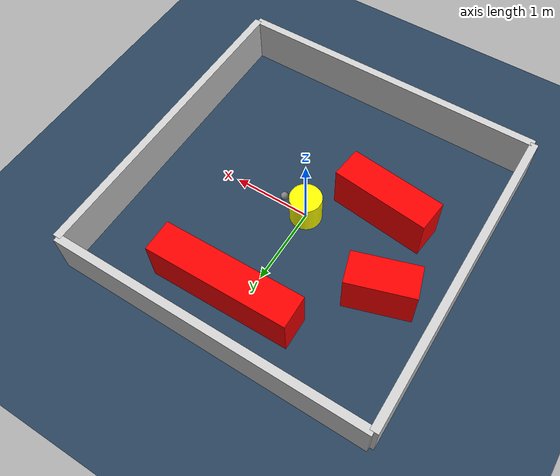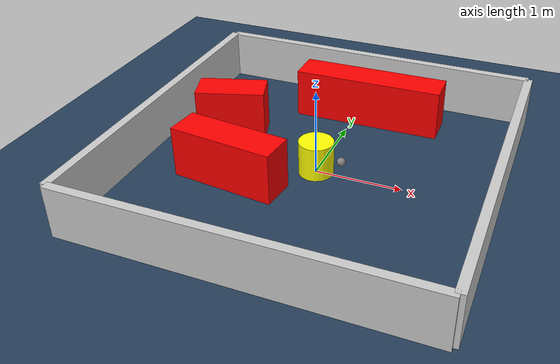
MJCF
<?xml version="1.0" ?>
<mujoco model="generated_environment">
  <option timestep="0.01" integrator="RK4" cone="elliptic"/>
  <default>
    <geom density="1"/>
  </default>
  <asset>
    <texture builtin="gradient" height="3072" rgb1="0.3 0.5 0.7" rgb2="0 0 0" type="skybox" width="512"/>
    <texture builtin="checker" height="300" mark="edge" markrgb="0.8 0.8 0.8" name="groundplane" rgb1="0.2 0.3 0.4" rgb2="0.1 0.2 0.3" type="2d" width="300"/>
    <material name="groundplane" reflectance="0.2" texrepeat="5 5" texture="groundplane" texuniform="true"/>
    <material name="robot" rgba="0.0 1.0 0.0 1"/>
  </asset>
  <worldbody>
    <light dir="0 0 -1" directional="true" pos="0 0 1.5"/>
    <geom condim="4" friction="1.0 0.005 0.001" material="groundplane" name="floor" size="0 0 0.05" type="plane"/>
    <body name="walls">
      <geom name="wall_1" condim="4" pos="-2.0 0.0 0.3" rgba="0.800000011920929 0.800000011920929 0.800000011920929 1.0" size="0.05 2.0 0.3" type="box"/>
      <geom name="wall_2" condim="4" pos="2.0 0.0 0.3" rgba="0.800000011920929 0.800000011920929 0.800000011920929 1.0" size="0.05 2.0 0.3" type="box"/>
      <geom name="wall_3" condim="4" pos="0.0 -2.0 0.3" rgba="0.800000011920929 0.800000011920929 0.800000011920929 1.0" size="2.0 0.05 0.3" type="box"/>
      <geom name="wall_4" condim="4" pos="0.0 2.0 0.3" rgba="0.800000011920929 0.800000011920929 0.800000011920929 1.0" size="2.0 0.05 0.3" type="box"/>
    </body>
    <body name="robot">
      <joint name="joint_x" type="slide" pos="0 0 0" axis="1 0 0"/>
      <joint name="joint_y" type="slide" pos="0 0 0" axis="0 1 0"/>
      <geom name="robot" type="sphere" pos="0.3 0.0 0.2" size="0.05" mass="5." friction="1.0 0.005 0.0001" condim="4" rgba="0.5 0.5 0.5 1.0"/>
      <site name="sensor_ball"/>
    </body>
    <body name="obstacle_movable_1">
      <geom name="obstacle_movable_1" condim="4" pos="0.0 0.0 0.2" euler="0 0 0.0" friction="1.0 0.005 0.001" rgba="1.0 1.0 0.0 1.0" size="0.2 0.2 0.0" type="cylinder" mass="0.1"/>
      <joint type="free"/>
    </body>
    <body name="obstacle_2_static">
      <geom name="obstacle_2_static" condim="4" pos="-1.2902582989696765 0.49718289972921226 0.3" euler="0 0 17.659932514220742" friction="1.0 0.005 0.001" rgba="1 0 0 1" size="0.4101393856940838 0.2 0.3" type="box"/>
    </body>
    <body name="obstacle_3_static">
      <geom name="obstacle_3_static" condim="4" pos="-0.8119155249360019 -0.5068716108472675 0.3" euler="0 0 173.59139443528466" friction="1.0 0.005 0.001" rgba="1 0 0 1" size="0.6135375950035409 0.2 0.3" type="box"/>
    </body>
    <body name="obstacle_4_static">
      <geom name="obstacle_4_static" condim="4" pos="0.1814703832578921 1.3816504724548888 0.3" euler="0 0 0.8560893428665972" friction="1.0 0.005 0.001" rgba="1 0 0 1" size="0.8971065299002707 0.2 0.3" type="box"/>
    </body>
  </worldbody>
  <actuator>
    <motor name="actuator_x" joint="joint_x" gear="1" ctrlrange="-1 1"/>
    <motor name="actuator_y" joint="joint_y" gear="1" ctrlrange="-1 1"/>
  </actuator>
</mujoco>
